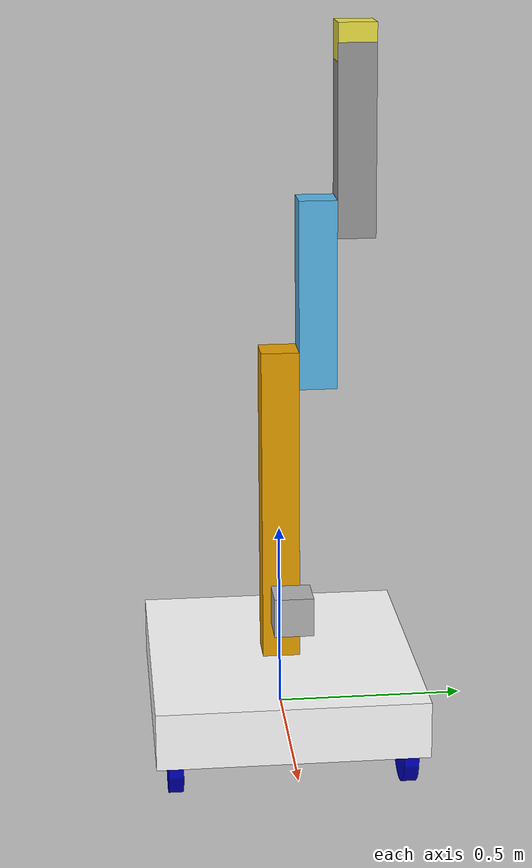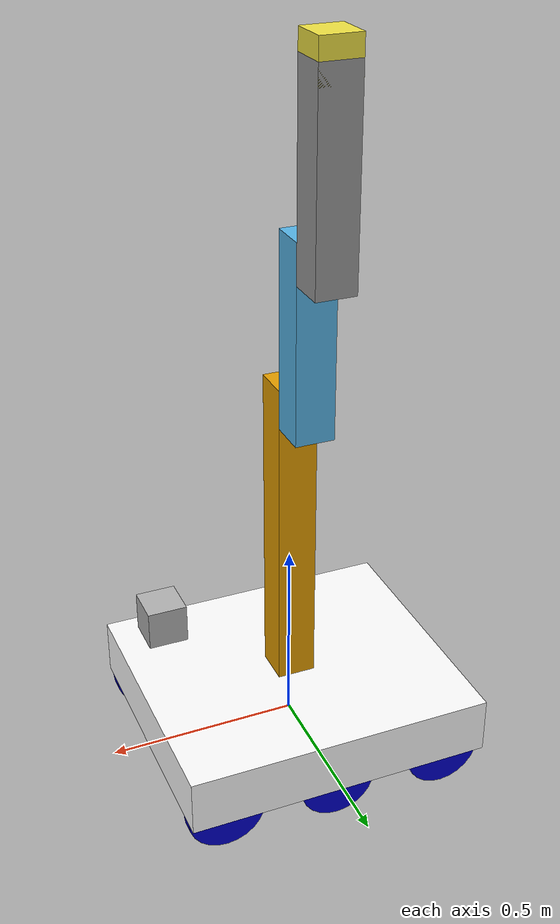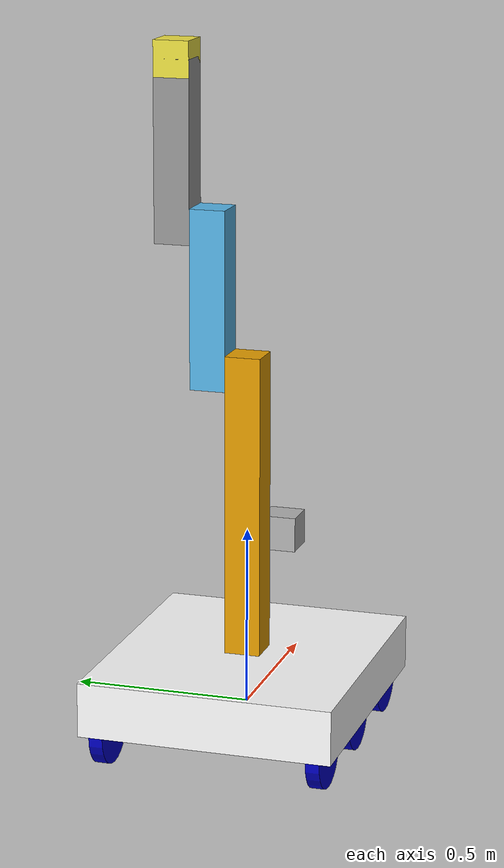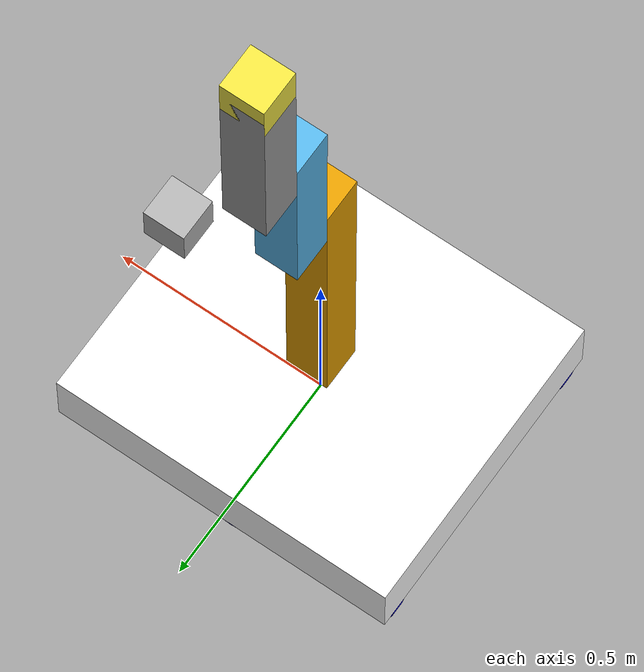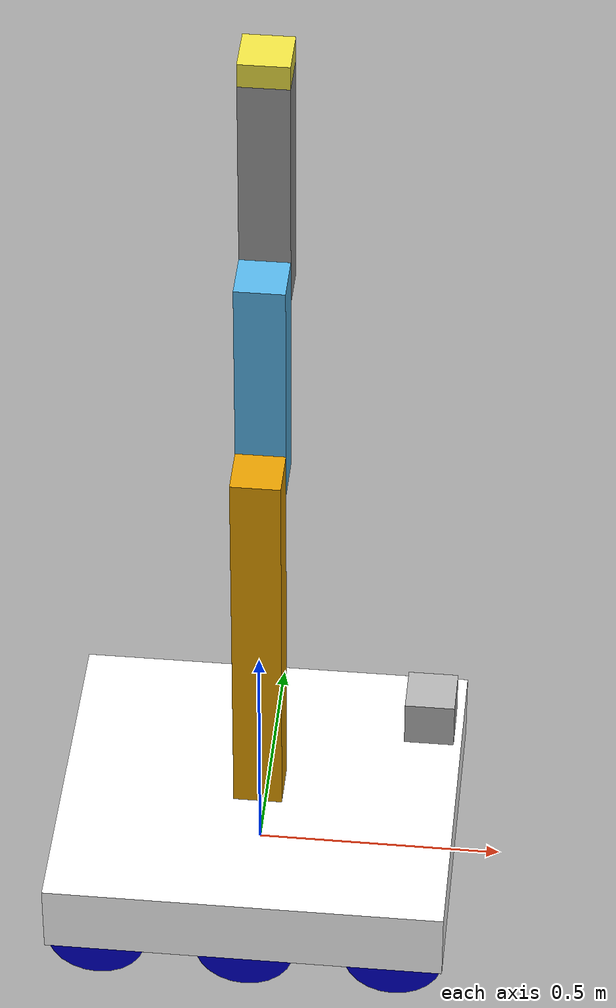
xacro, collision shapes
<?xml version="1.0"?>
<robot name="robot_with_arm" xmlns:xacro="http://ros.org/wiki/xacro">

    <xacro:include filename="$(find cse468_final_bot)/urdf/drivebase_macro.xacro"/>
    <xacro:include filename="$(find cse468_final_bot)/urdf/chassis.xacro" />

    <link name="base_link"/>

    <xacro:robot_chassis name="chassis" parent="base_link" z_offset="0.0" chassis_length="0.8128" chassis_width="0.7112" chassis_height="0.1524" chassis_mass="50"/>

    <xacro:six_wheel_diff_drive name="tank_drive" parent="base_link" z_offset="0.0" drop_wheel_height="0.003175" wheel_separation="0.6096" wheelbase_length="0.6096" wheel_radius="0.1016" wheel_width="0.0381" wheel_mass="1"/>

    <xacro:include filename="$(find cse468_final_bot)/urdf/arm_macro.xacro"/>
    <xacro:include filename="$(find cse468_final_bot)/urdf/laser.xacro"/>
    <xacro:include filename="$(find cse468_final_bot)/urdf/kinect.xacro"/>
    <xacro:include filename="$(find cse468_final_bot)/urdf/imu.xacro"/>

    <gazebo>
        <static>false</static>

        <plugin name="gazebo_ros_control" filename="libgazebo_ros_control.so">
            <robotNamespace>/</robotNamespace>
            <robotSimType>gazebo_ros_control/DefaultRobotHWSim</robotSimType>
            <legacyModeNS>true</legacyModeNS>
        </plugin>
    </gazebo>
</robot>

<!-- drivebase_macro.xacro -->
<root xmlns:xacro="http://ros.org/wiki/xacro">
    <xacro:include filename="$(find cse468_final_bot)/urdf/inertia.xacro" />
    <xacro:property name="front" value="1" />
    <xacro:property name="middle" value="0" />
    <xacro:property name="rear" value="-1" />
    <xacro:property name="left" value="1" />
    <xacro:property name="right" value="-1" />
    <xacro:property name="no_drop" value="0" />
    <xacro:property name="drop" value="-1" />
    <xacro:property name="high_friction" value="200.0" />
    <xacro:property name="medium_friction" value="100.0" />
    <xacro:property name="low_friction" value="1.0" />
    <xacro:property name="pivot_radius" value="0.025" />
    <xacro:property name="pivot_height" value="0.025" />
    <xacro:property name="pivot_mass" value="1.0" />

    <material name="blue">
        <color rgba="0 0 0.8 1"/>
    </material>

    <material name="white">
        <color rgba="1 1 1 1"/>
    </material>

    <xacro:macro name="six_wheel_diff_drive" params="name parent z_offset drop_wheel_height wheel_separation wheelbase_length wheel_radius wheel_width wheel_mass">
        <xacro:macro name="diff_wheel" params=" parent2 prefix side fntctrbck drop friction mimic mimic_parent">
            <link name="${prefix}_diff_wheel">
                <visual>
                    <geometry>
                        <cylinder length="${wheel_width}" radius="${wheel_radius}"/>
                    </geometry>
                    <origin xyz="0 0 0"/>
                    <material name="blue"/>
                </visual>
                <collision>
                    <geometry>
                        <cylinder length="${wheel_width}" radius="${wheel_radius}"/>
                    </geometry>
                    <origin xyz="0 0 0"/>
                </collision>
                <inertial>
                    <mass value="${wheel_mass}"/>
                    <xacro:cylinder_inertia m="${wheel_mass}" r="${wheel_radius}" h="${wheel_width}"/>
                    <origin xyz="0 0 0"/>
                </inertial>
            </link>
            <joint name="${parent2}_to_${prefix}_diff_wheel" type="continuous">
                <parent link="${parent2}"/>
                <child link="${prefix}_diff_wheel"/>
                <axis xyz="0 0 ${-1*side}"/>
                <origin rpy="${side*pi/2} 0 0" xyz="${fntctrbck*(wheelbase_length/2)} ${side*(wheel_separation/2)} ${z_offset+drop*drop_wheel_height}"/>
                <xacro:if value="${mimic != 'NONE'}">
                    <mimic joint="${mimic_parent}_to_${mimic}_diff_wheel"/>
                </xacro:if>
            </joint>
            <transmission name="${prefix}_diff_wheel_trans">
                <type>transmission_interface/SimpleTransmission</type>
                <actuator name="${prefix}_diff_wheel_motor">
                    <mechanicalReduction>1</mechanicalReduction>
                </actuator>
                <joint name="${parent2}_to_${prefix}_diff_wheel">
                    <hardwareInterface>hardware_interface/VelocityJointInterface</hardwareInterface>
                </joint>
            </transmission>
            <gazebo reference="${prefix}_diff_wheel">
                <mu1 value="${friction}"/>
                <mu2 value="${friction}"/>
                <kp value="10000000.0"/>
                <kd value="1.0" />
                <material>Gazebo/gray</material>
            </gazebo>
        </xacro:macro>
        <xacro:diff_wheel parent2="${parent}" prefix="fl" side="${left}" fntctrbck="${front}" drop="${no_drop}" friction="${low_friction}" mimic="ml" mimic_parent="base_link"/>
        <xacro:diff_wheel parent2="${parent}" prefix="ml" side="${left}" fntctrbck="${middle}" drop="${drop}" friction="${high_friction}" mimic="NONE" mimic_parent="base_link"/>
        <xacro:diff_wheel parent2="${parent}" prefix="rl" side="${left}" fntctrbck="${rear}" drop="${no_drop}" friction="${low_friction}"  mimic="ml" mimic_parent="base_link"/>
        <xacro:diff_wheel parent2="${parent}" prefix="fr" side="${right}" fntctrbck="${front}" drop="${no_drop}" friction="${low_friction}"  mimic="mr" mimic_parent="base_link"/>
        <xacro:diff_wheel parent2="${parent}" prefix="mr" side="${right}" fntctrbck="${middle}" drop="${drop}" friction="${high_friction}"  mimic="NONE" mimic_parent="base_link"/>
        <xacro:diff_wheel parent2="${parent}" prefix="rr" side="${right}" fntctrbck="${rear}" drop="${no_drop}" friction="${low_friction}"  mimic="mr" mimic_parent="base_link"/>
    </xacro:macro>
</root>

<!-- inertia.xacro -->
<root xmlns:xacro="http://ros.org/wiki/xacro">
    <xacro:macro name="box_inertia" params="m x y z">
        <inertia  ixx="${m*(y*y+z*z)/12}" ixy ="0" ixz ="0" iyy="${m*(x*x+z*z)/12}" iyz ="0" izz="${m*(x*x+z*z)/12}"/>
    </xacro:macro>
    <xacro:macro name="cylinder_inertia" params="m r h">
        <inertia  ixx="${m*(3*r*r+h*h)/12}" ixy ="0" ixz ="0" iyy="${m*(3*r*r+h*h)/12}" iyz ="0" izz="${m*r*r/2}"/>
    </xacro:macro>
    <xacro:macro name="sphere_inertia" params="m r">
        <inertia  ixx="${2*m*r*r/5}" ixy ="0" ixz ="0" iyy="${2*m*r*r/5}" iyz ="0" izz="${2*m*r*r/5}"/>
    </xacro:macro>
</root>

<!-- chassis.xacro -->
<root xmlns:xacro="http://ros.org/wiki/xacro">
    <xacro:include filename="$(find cse468_final_bot)/urdf/inertia.xacro" />
    <xacro:macro name="robot_chassis" params="name parent z_offset chassis_length chassis_width chassis_height chassis_mass">
        <link name="chassis">
            <visual>
                <geometry>
                    <box size="${chassis_length} ${chassis_width} ${chassis_height}"/>
                </geometry>
                <origin xyz="0 0 ${chassis_height/2}"/>
                <material name="white"/>
            </visual>
            <collision>
                <geometry>
                    <box size="${chassis_length} ${chassis_width} ${chassis_height}"/>
                </geometry>
                <origin xyz="0 0 ${chassis_height/2}"/>
            </collision>
            <inertial>
                <mass value="${chassis_mass}"/>
                <xacro:box_inertia m="${chassis_mass}" x="${chassis_length}" y="${chassis_width}" z="${chassis_height}"/>
                <origin xyz="0 0 ${chassis_height/2+z_offset}"/>
            </inertial>
        </link>
        <joint name="${parent}_to_chassis" type="fixed">
            <parent link="${parent}"/>
            <child link="chassis"/>
            <axis xyz="0 0 ${z_offset}"/>
            <origin rpy="0 0 0"/>
        </joint>
    </xacro:macro>
</root>

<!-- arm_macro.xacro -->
<!-- Revolute-Revolute Manipulator -->
<robot
    xmlns:xacro="http://www.ros.org/wiki/xacro" name="rrbot">
    <!-- Constants for robot dimensions -->
    <xacro:property name="width" value="0.1" />
    <xacro:property name="height1" value="1" />
    <xacro:property name="height2" value=".5" />
    <xacro:property name="height3" value=".5" />
    <xacro:property name="axle_offset" value="0.05" />
    <xacro:property name="damp" value="0.7" />
    <!-- Base Link -->
    <joint name="gripper_extension" type="fixed">
        <parent link="base_link"/>
        <child link="base_link2"/>
        <origin rpy="0 0 0" xyz="0 0 0"/>
    </joint>
    <link name="base_link2">
        <visual>
            <origin xyz="0 0 ${height1/2}" rpy="0 0 0" />
            <geometry>
                <box size="${width} ${width} ${height1}" />
            </geometry>
        </visual>
        <collision>
            <origin xyz="0 0 ${height1/2}" rpy="0 0 0" />
            <geometry>
                <box size="${width} ${width} ${height1}" />
            </geometry>
        </collision>
        <inertial>
            <origin xyz="0 0 ${height1/2}" rpy="0 0 0" />
            <mass value="1" />
            <inertia ixx="1.0" ixy="0.0" ixz="0.0" iyy="1.0" iyz="0.0" izz="1.0" />
        </inertial>
    </link>
    <!-- Joint between Base Link and Middle Link -->
    <joint name="joint_base_mid" type="revolute">
        <parent link="base_link2" />
        <child link="mid_link" />
        <origin xyz="0 ${width} ${height1 - axle_offset}" rpy="0 0  0" />
        <axis xyz="0 1 0" />
        <dynamics damping="${damp}" />
        <limit effort="100.0" velocity="0.5" lower="-3.14" upper="3.14" />
    </joint>
    <!-- Middle Link -->
    <link name="mid_link">
        <visual>
            <origin xyz="0 0 ${height2/2 - axle_offset}" rpy="0 0 0" />
            <geometry>
                <box size="${width} ${width} ${height2}" />
            </geometry>
        </visual>
        <collision>
            <origin xyz="0 0 ${height2/2 - axle_offset}" rpy="0 0 0" />
            <geometry>
                <box size="${width} ${width} ${height2}" />
            </geometry>
        </collision>
        <inertial>
            <origin xyz="0 0 ${height2/2 - axle_offset}" rpy="0 0 0" />
            <mass value="1" />
            <inertia ixx="1.0" ixy="0.0" ixz="0.0" iyy="1.0" iyz="0.0" izz="1.0" />
        </inertial>
    </link>
    <!-- Joint between Middle Link and Top Link -->
    <joint name="joint_mid_top" type="revolute">
        <parent link="mid_link" />
        <child link="top_link" />
        <origin xyz="0 ${width} ${height2 - axle_offset*2}" rpy="0 0  0" />
        <axis xyz="0 1 0" />
        <dynamics damping="${damp}" />
        <limit effort="100.0" velocity="0.5" lower="-3.14" upper="3.14" />
    </joint>
    <!-- Top Link -->
    <link name="top_link">
        <visual>
            <origin xyz="0 0 ${height3/2 - axle_offset}" rpy="0 0 0" />
            <geometry>
                <box size="${width} ${width} ${height3}" />
            </geometry>
        </visual>
        <collision>
            <origin xyz="0 0 ${height3/2 - axle_offset}" rpy="0 0 0" />
            <geometry>
                <box size="${width} ${width} ${height3}" />
            </geometry>
        </collision>
        <inertial>
            <origin xyz="0 0 ${height3/2 - axle_offset}" rpy="0 0 0" />
            <mass value="1" />
            <inertia ixx="1.0" ixy="0.0" ixz="0.0" iyy="1.0" iyz="0.0" izz="1.0" />
        </inertial>
    </link>
    <joint name="left_gripper_joint" type="revolute">
        <parent link="top_link"/>
        <child link="left_gripper"/>
        <origin xyz="0 0 ${height2 - axle_offset}" rpy="0 -1.57 0"/>
        <axis xyz="0 0 1"/>
        <limit effort="30.0" lower="-0.548" upper="0.0" velocity="0.1"/>
    </joint>
    <link name="left_gripper">
        <visual>
            <origin rpy="0 0 0" xyz="0 0 0"/>
            <geometry>
                <mesh filename="package://urdf_tutorial/meshes/l_finger.dae"/>
            </geometry>
        </visual>
        <collision>
            <geometry>
                <box size="0.1 0.1 0.1"/>
            </geometry>
        </collision>
    </link>
    <joint name="left_tip_joint" type="fixed">
        <parent link="left_gripper"/>
        <child link="left_tip"/>
    </joint>
    <link name="left_tip">
        <visual>
            <origin rpy="0 0 0" xyz="0.09137 0.00495 0"/>
            <geometry>
                <mesh
          filename="package://urdf_tutorial/meshes/l_finger_tip.dae"/>
            </geometry>
        </visual>
        <collision>
            <geometry>
                <box size="0.1 0.1 0.1"/>
            </geometry>
        </collision>
    </link>
    <joint name="right_gripper_joint" type="revolute">
        <parent link="top_link"/>
        <child link="right_gripper"/>
        <origin xyz="0 0 ${height2 - axle_offset}" rpy="0 -1.57 0"/>
        <axis xyz="0 0 -1"/>
        <limit effort="30.0" lower="0.0" upper="0.548" velocity="0.5"/>
    </joint>
    <link name="right_gripper">
        <visual>
            <origin rpy="-3.1415 0 0" xyz="0 0 0"/>
            <geometry>
                <mesh filename="package://urdf_tutorial/meshes/l_finger.dae"/>
            </geometry>
        </visual>
        <collision>
            <geometry>
                <box size="0.1 0.1 0.1"/>
            </geometry>
        </collision>
    </link>
    <joint name="right_tip_joint" type="fixed">
        <parent link="right_gripper"/>
        <child link="right_tip"/>
    </joint>
    <link name="right_tip">
        <visual>
            <origin rpy="-3.1415 0 0" xyz="0.09137 0.00495 0"/>
            <geometry>
                <mesh filename="package://urdf_tutorial/meshes/l_finger_tip.dae"/>
            </geometry>
        </visual>
        <collision>
            <geometry>
                <box size="0.1 0.1 0.1"/>
            </geometry>
        </collision>
    </link>

    <transmission name="middle_link_trans">
        <type>transmission_interface/SimpleTransmission</type>
        <actuator name="middle_link_motor">
            <mechanicalReduction>1</mechanicalReduction>
        </actuator>
        <joint name="joint_base_mid">
            <hardwareInterface>hardware_interface/PositionJointInterface</hardwareInterface>
        </joint>
    </transmission>
    <gazebo reference="middle_link">
        <mu1 value="0.01"/>
        <mu2 value="0.01"/>
        <kp value="10000000.0"/>
        <kd value="1.0" />
        <material>Gazebo/gray</material>
    </gazebo>

    <transmission name="top_link_trans">
        <type>transmission_interface/SimpleTransmission</type>
        <actuator name="top_link_motor">
            <mechanicalReduction>1</mechanicalReduction>
        </actuator>
        <joint name="joint_mid_top">
            <hardwareInterface>hardware_interface/PositionJointInterface</hardwareInterface>
        </joint>
    </transmission>
    <gazebo reference="top_link">
        <mu1 value="0.01"/>
        <mu2 value="0.01"/>
        <kp value="10000000.0"/>
        <kd value="1.0" />
        <material>Gazebo/gray</material>
    </gazebo>
</robot>

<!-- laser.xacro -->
<robot name="laser" xmlns:xacro="http://ros.org/wiki/xacro">
    <joint name="laser_joint" type="fixed">
        <axis xyz="0.0 1.0 0.0"/>
        <origin xyz=".35 0 0.4" rpy="0.0 0.0 0.0"/>
        <parent link="base_link"/>
        <child link="hokuyo_link"/>
    </joint>

    <!-- Hokuyo Laser -->
    <link name="hokuyo_link" type="laser">
        <collision>
            <origin xyz="0 0 0" rpy="0 0 0"/>
            <geometry>
                <box size="0.1 0.1 0.1"/>
            </geometry>
        </collision>

        <visual>
            <origin xyz="0 0 0" rpy="0 0 0"/>
            <geometry>
                <mesh filename="package://cse468_final_bot/meshes/hokuyo.dae"/>
            </geometry>
        </visual>

        <inertial>
            <mass value="0.05" />
            <origin xyz="0 0 0" rpy="0 0 0"/>
            <inertia ixx="1e-6" ixy="0" ixz="0" iyy="1e-6" iyz="0" izz="1e-6" />
        </inertial>
    </link>

    <gazebo reference="hokuyo_link">
        <sensor type="ray" name="head_hokuyo_sensor">
            <pose>0 0 0 0 0 0</pose>
            <visualize>false</visualize>
            <update_rate>40</update_rate>
            <ray>
                <scan>
                <horizontal>
                    <samples>720</samples>
                    <resolution>1</resolution>
                    <min_angle>-1.570796</min_angle>
                    <max_angle>1.570796</max_angle>
                </horizontal>
                </scan>
                <range>
                <min>0.10</min>
                <max>30.0</max>
                <resolution>0.01</resolution>
                </range>
                <noise>
                <type>gaussian</type>
                <mean>0.0</mean>
                <stddev>0.01</stddev>
                </noise>
            </ray>
            <plugin name="gazebo_ros_head_hokuyo_controller" filename="libgazebo_ros_laser.so">
                <topicName>/scan</topicName>
                <frameName>hokuyo_link</frameName>
            </plugin>
        </sensor>
    </gazebo>
</robot>

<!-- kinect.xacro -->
<robot name="kinect" xmlns:xacro="http://ros.org/wiki/xacro">
    <link name="camera_link">
        <collision>
            <origin xyz="0 0 0" rpy="0 0 0"/>
            <geometry>
                <box size="0.1 0.1 0.1"/>
            </geometry>
        </collision>

        <visual>
            <origin xyz="0 0 0" rpy="0 0 0"/>
            <geometry>
                <mesh filename="package://cse468_final_bot/meshes/kinect.dae"/>
            </geometry>
        </visual>

        <inertial>
            <mass value="0.05" />
            <origin xyz="0 0 0" rpy="0 0 0"/>
            <inertia ixx="1e-6" ixy="0" ixz="0" iyy="1e-6" iyz="0" izz="1e-6" />
        </inertial>
    </link>

    <joint name="camera_joint" type="fixed">
        <axis xyz="0.0 0.0 0.0"/>
        <origin xyz=".35 0 0.4" rpy="0.0 0.0 0.0"/>
        <parent link="base_link"/>
        <child link="camera_link"/>
    </joint>

    <gazebo reference="camera_link">
        <sensor type="depth" name="camera1">
            <update_rate>30.0</update_rate>
            <camera name="head">
                <horizontal_fov>1.3962634</horizontal_fov>
                <image>
                <width>800</width>
                <height>800</height>
                <format>R8G8B8</format>
                </image>
                <clip>
                <near>0.02</near>
                <far>300</far>
                </clip>
            </camera>
            <plugin name="camera_plugin" filename="libgazebo_ros_openni_kinect.so">
                <baseline>0.2</baseline>
                <alwaysOn>true</alwaysOn>
                <updateRate>0.0</updateRate>
                <cameraName>camera_ir</cameraName>
                <imageTopicName>color/image_raw</imageTopicName>
                <cameraInfoTopicName>color/camera_info</cameraInfoTopicName>
                <depthImageTopicName>depth/image_raw</depthImageTopicName>
                <depthImageCameraInfoTopicName>depth/camera_info</depthImageCameraInfoTopicName>
                <pointCloudTopicName>depth/points</pointCloudTopicName>
                <frameName>camera_link</frameName>
                <pointCloudCutoff>0.5</pointCloudCutoff>
                <pointCloudCutoffMax>3.0</pointCloudCutoffMax>
                <distortionK1>0</distortionK1>
                <distortionK2>0</distortionK2>
                <distortionK3>0</distortionK3>
                <distortionT1>0</distortionT1>
                <distortionT2>0</distortionT2>
                <CxPrime>0</CxPrime>
                <Cx>0</Cx>
                <Cy>0</Cy>
                <focalLength>0</focalLength>
                <hackBaseline>0</hackBaseline>
            </plugin>
        </sensor>
    </gazebo>
</robot>

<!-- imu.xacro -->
<root xmlns:xacro="http://ros.org/wiki/xacro">
    <link name="imu_link"/>
    <joint name="base_link_to_imu_link" type="fixed">
        <parent link="base_link"/>
        <child link="imu_link"/>
        <origin rpy="0 0 0" xyz="0 0 0"/>
    </joint>

    <gazebo reference="imu_link">
        <gravity>true</gravity>
        <sensor name="imu_sensor" type="imu">
            <always_on>true</always_on>
            <update_rate>100</update_rate>
            <visualize>true</visualize>
            <topic>imu</topic>
            <plugin filename="libgazebo_ros_imu_sensor.so" name="imu_plugin">
                <topicName>imu</topicName>
                <bodyName>imu_link</bodyName>
                <updateRateHZ>100.0</updateRateHZ>
                <gaussianNoise>0.0001</gaussianNoise>
                <xyzOffset>0 0 0</xyzOffset>
                <rpyOffset>0 0 0</rpyOffset>
                <frameName>imu_link</frameName>
            </plugin>
            <pose>0 0 0 0 0 0</pose>
        </sensor>
    </gazebo>
</root>
